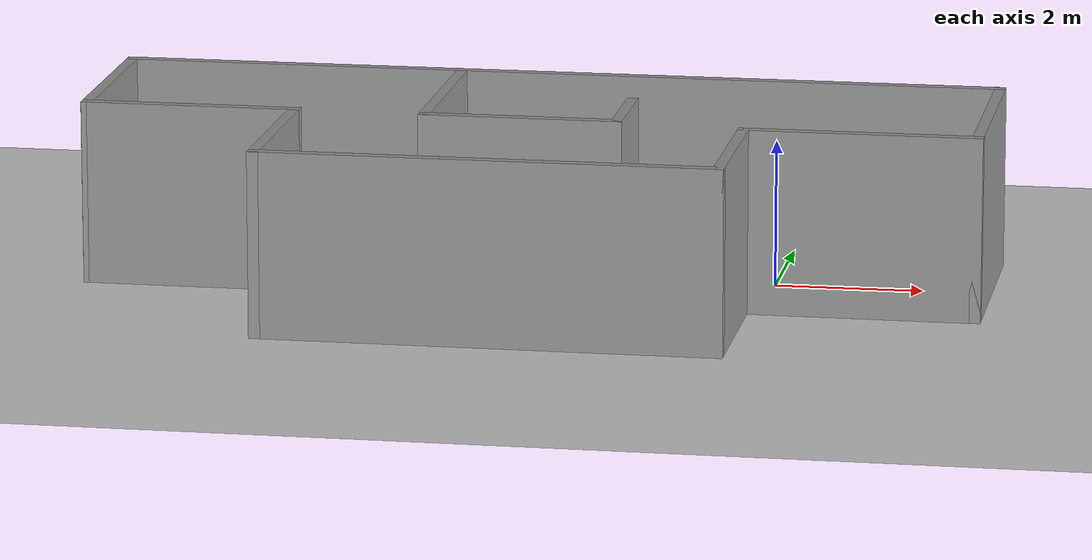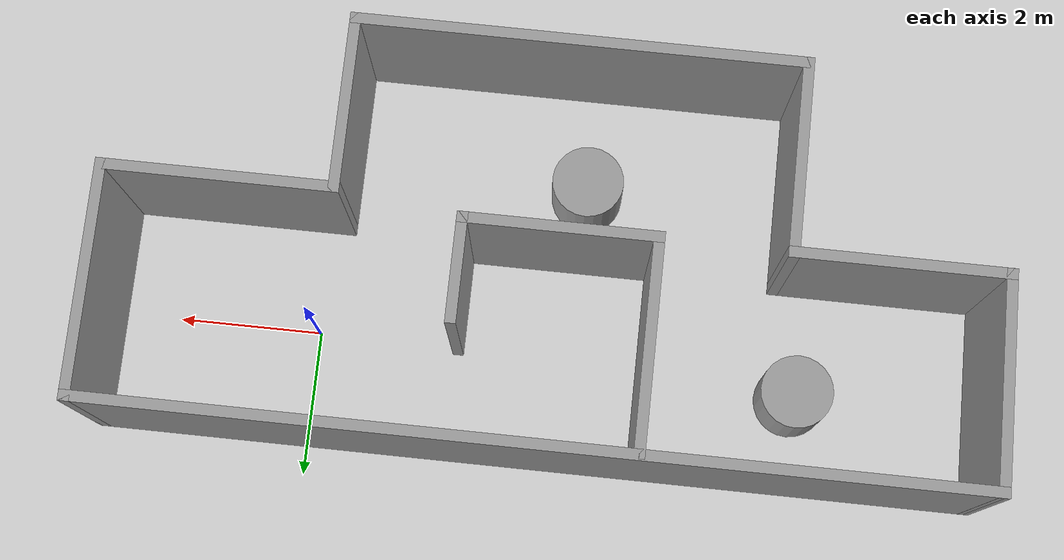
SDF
<sdf version="1.7">
 <world name="default">
  <light name="sun" type="directional">
   <pose>0 0 10 0 -0 0</pose>
   <diffuse>0.8 0.8 0.8 1</diffuse>
   <specular>0.2 0.2 0.2 1</specular>
   <attenuation>
    <range>1000</range>
    <constant>0.9</constant>
    <linear>0.01</linear>
    <quadratic>0.001</quadratic>
   </attenuation>
   <direction>-0.5 0.1 -0.9</direction>
   <spot><inner_angle>0</inner_angle><outer_angle>0</outer_angle><falloff>0</falloff></spot>
  </light>
  <model name="ground_plane">
   <static>1</static>
   <link name="link">
    <collision name="collision">
     <geometry><plane><normal>0 0 1</normal><size>100 100</size></plane></geometry>
     <surface><friction><ode><mu>100</mu><mu2>50</mu2></ode></friction></surface>
    </collision>
    <visual name="visual">
     <cast_shadows>0</cast_shadows>
     <geometry><plane><normal>0 0 1</normal><size>100 100</size></plane></geometry>
     <material>
      <script><uri>file://media/materials/scripts/gazebo.material</uri><name>Gazebo/Grey</name></script>
     </material>
    </visual>
   </link>
  </model>
  <gravity>0 0 -9.8</gravity>
  <magnetic_field>6e-06 2.3e-05 -4.2e-05</magnetic_field>
  <atmosphere type="adiabatic"/>
  <physics type="ode">
   <max_step_size>0.001</max_step_size>
   <real_time_factor>1</real_time_factor>
   <real_time_update_rate>1000</real_time_update_rate>
  </physics>
  <scene><ambient>0.4 0.4 0.4 1</ambient><background>0.7 0.7 0.7 1</background><shadows>1</shadows></scene>
  <audio><device>default</device></audio>
  <spherical_coordinates>
   <surface_model>EARTH_WGS84</surface_model>
   <latitude_deg>0</latitude_deg>
   <longitude_deg>0</longitude_deg>
   <elevation>0</elevation>
   <heading_deg>0</heading_deg>
  </spherical_coordinates>
  <model name="task1">
   <pose>-3.19723 -1.18273 0 0 -0 0</pose>
   <link name="Wall_1">
    <collision name="Wall_1_Collision">
     <geometry><box><size>12.25 0.15 2.5</size></box></geometry>
     <pose>0 0 1.25 0 -0 0</pose>
    </collision>
    <visual name="Wall_1_Visual">
     <pose>0 0 1.25 0 -0 0</pose>
     <geometry><box><size>12.25 0.15 2.5</size></box></geometry>
     <material>
      <script><uri>file://media/materials/scripts/gazebo.material</uri><name>Gazebo/Grey</name></script>
      <ambient>1 1 1 1</ambient>
     </material>
     <meta><layer>0</layer></meta>
    </visual>
    <pose>0.000652 2.72435 0 0 -0 0</pose>
   </link>
   <link name="Wall_10">
    <collision name="Wall_10_Collision">
     <geometry><box><size>3.00044 0.15 2.5</size></box></geometry>
     <pose>0 0 1.25 0 -0 0</pose>
    </collision>
    <visual name="Wall_10_Visual">
     <pose>0 0 1.25 0 -0 0</pose>
     <geometry><box><size>3.00044 0.15 2.5</size></box></geometry>
     <material>
      <script><uri>file://media/materials/scripts/gazebo.material</uri><name>Gazebo/Grey</name></script>
      <ambient>1 1 1 1</ambient>
     </material>
     <meta><layer>0</layer></meta>
    </visual>
    <pose>-6.02435 1.29935 0 0 -0 1.58834</pose>
   </link>
   <link name="Wall_12">
    <collision name="Wall_12_Collision">
     <geometry><box><size>3 0.15 2.5</size></box></geometry>
     <pose>0 0 1.25 0 -0 0</pose>
    </collision>
    <visual name="Wall_12_Visual">
     <pose>0 0 1.25 0 -0 0</pose>
     <geometry><box><size>3 0.15 2.5</size></box></geometry>
     <material>
      <script><uri>file://media/materials/scripts/gazebo.material</uri><name>Gazebo/Grey</name></script>
      <ambient>1 1 1 1</ambient>
     </material>
     <meta><layer>0</layer></meta>
    </visual>
    <pose>-1.37935 1.27935 0 0 -0 1.5708</pose>
   </link>
   <link name="Wall_15">
    <collision name="Wall_15_Collision">
     <geometry><box><size>2.75 0.15 2.5</size></box></geometry>
     <pose>0 0 1.25 0 -0 0</pose>
    </collision>
    <visual name="Wall_15_Visual">
     <pose>0 0 1.25 0 -0 0</pose>
     <geometry><box><size>2.75 0.15 2.5</size></box></geometry>
     <material>
      <script><uri>file://media/materials/scripts/gazebo.material</uri><name>Gazebo/Grey</name></script>
      <ambient>1 1 1 1</ambient>
     </material>
     <meta><layer>0</layer></meta>
    </visual>
    <pose>-0.079348 -0.145652 0 0 -0 0</pose>
   </link>
   <link name="Wall_16">
    <collision name="Wall_16_Collision">
     <geometry><box><size>1.5 0.15 2.5</size></box></geometry>
     <pose>0 0 1.25 0 -0 0</pose>
    </collision>
    <visual name="Wall_16_Visual">
     <pose>0 0 1.25 0 -0 0</pose>
     <geometry><box><size>1.5 0.15 2.5</size></box></geometry>
     <material>
      <script><uri>file://media/materials/scripts/gazebo.material</uri><name>Gazebo/Grey</name></script>
      <ambient>1 1 1 1</ambient>
     </material>
     <meta><layer>0</layer></meta>
    </visual>
    <pose>1.22065 0.529348 0 0 -0 1.5708</pose>
   </link>
   <link name="Wall_2">
    <collision name="Wall_2_Collision">
     <geometry><box><size>3.25 0.15 2.5</size></box></geometry>
     <pose>0 0 1.25 0 -0 0</pose>
    </collision>
    <visual name="Wall_2_Visual">
     <pose>0 0 1.25 0 -0 0</pose>
     <geometry><box><size>3.25 0.15 2.5</size></box></geometry>
     <material>
      <script><uri>file://media/materials/scripts/gazebo.material</uri><name>Gazebo/Grey</name></script>
      <ambient>1 1 1 1</ambient>
     </material>
     <meta><layer>0</layer></meta>
    </visual>
    <pose>6.05065 1.17435 0 0 -0 -1.5708</pose>
   </link>
   <link name="Wall_3">
    <collision name="Wall_3_Collision">
     <geometry><box><size>3.25 0.15 2.5</size></box></geometry>
     <pose>0 0 1.25 0 -0 0</pose>
    </collision>
    <visual name="Wall_3_Visual">
     <pose>0 0 1.25 0 -0 0</pose>
     <geometry><box><size>3.25 0.15 2.5</size></box></geometry>
     <material>
      <script><uri>file://media/materials/scripts/gazebo.material</uri><name>Gazebo/Grey</name></script>
      <ambient>1 1 1 1</ambient>
     </material>
     <meta><layer>0</layer></meta>
    </visual>
    <pose>4.50065 -0.375652 0 0 -0 3.14159</pose>
   </link>
   <link name="Wall_4">
    <collision name="Wall_4_Collision">
     <geometry><box><size>2.5 0.15 2.5</size></box></geometry>
     <pose>0 0 1.25 0 -0 0</pose>
    </collision>
    <visual name="Wall_4_Visual">
     <pose>0 0 1.25 0 -0 0</pose>
     <geometry><box><size>2.5 0.15 2.5</size></box></geometry>
     <material>
      <script><uri>file://media/materials/scripts/gazebo.material</uri><name>Gazebo/Grey</name></script>
      <ambient>1 1 1 1</ambient>
     </material>
     <meta><layer>0</layer></meta>
    </visual>
    <pose>2.95065 -1.55065 0 0 -0 -1.5708</pose>
   </link>
   <link name="Wall_5">
    <collision name="Wall_5_Collision">
     <geometry><box><size>6.25 0.15 2.5</size></box></geometry>
     <pose>0 0 1.25 0 -0 0</pose>
    </collision>
    <visual name="Wall_5_Visual">
     <pose>0 0 1.25 0 -0 0</pose>
     <geometry><box><size>6.25 0.15 2.5</size></box></geometry>
     <material>
      <script><uri>file://media/materials/scripts/gazebo.material</uri><name>Gazebo/Grey</name></script>
      <ambient>1 1 1 1</ambient>
     </material>
     <meta><layer>0</layer></meta>
    </visual>
    <pose>-0.099348 -2.72565 0 0 -0 3.14159</pose>
   </link>
   <link name="Wall_6">
    <collision name="Wall_6_Collision">
     <geometry><box><size>2.75 0.15 2.5</size></box></geometry>
     <pose>0 0 1.25 0 -0 0</pose>
    </collision>
    <visual name="Wall_6_Visual">
     <pose>0 0 1.25 0 -0 0</pose>
     <geometry><box><size>2.75 0.15 2.5</size></box></geometry>
     <material>
      <script><uri>file://media/materials/scripts/gazebo.material</uri><name>Gazebo/Grey</name></script>
      <ambient>1 1 1 1</ambient>
     </material>
     <meta><layer>0</layer></meta>
    </visual>
    <pose>-3.14935 -1.42565 0 0 -0 1.5708</pose>
   </link>
   <link name="Wall_7">
    <collision name="Wall_7_Collision">
     <geometry><box><size>3 0.15 2.5</size></box></geometry>
     <pose>0 0 1.25 0 -0 0</pose>
    </collision>
    <visual name="Wall_7_Visual">
     <pose>0 0 1.25 0 -0 0</pose>
     <geometry><box><size>3 0.15 2.5</size></box></geometry>
     <material>
      <script><uri>file://media/materials/scripts/gazebo.material</uri><name>Gazebo/Grey</name></script>
      <ambient>1 1 1 1</ambient>
     </material>
     <meta><layer>0</layer></meta>
    </visual>
    <pose>-4.57435 -0.125652 0 0 -0 3.14159</pose>
   </link>
   <static>1</static>
  </model>
  <model name="unit_cylinder">
   <pose>-6.69991 0.284041 0.499995 2e-06 -1e-06 1e-05</pose>
   <link name="link">
    <inertial>
     <mass>1</mass>
     <inertia><ixx>0.145833</ixx><ixy>0</ixy><ixz>0</ixz><iyy>0.145833</iyy><iyz>0</iyz><izz>0.125</izz></inertia>
    </inertial>
    <collision name="collision">
     <geometry><cylinder><radius>0.5</radius><length>1</length></cylinder></geometry>
    </collision>
    <visual name="visual">
     <geometry><cylinder><radius>0.5</radius><length>1</length></cylinder></geometry>
     <material>
      <script><name>Gazebo/Grey</name><uri>file://media/materials/scripts/gazebo.material</uri></script>
     </material>
    </visual>
   </link>
  </model>
  <model name="unit_cylinder_0">
   <pose>-3.56818 -2.36573 0.499998 3e-06 4e-06 -0</pose>
   <link name="link">
    <inertial>
     <mass>1</mass>
     <inertia><ixx>0.145833</ixx><ixy>0</ixy><ixz>0</ixz><iyy>0.145833</iyy><iyz>0</iyz><izz>0.125</izz></inertia>
    </inertial>
    <collision name="collision">
     <geometry><cylinder><radius>0.5</radius><length>1</length></cylinder></geometry>
    </collision>
    <visual name="visual">
     <geometry><cylinder><radius>0.5</radius><length>1</length></cylinder></geometry>
     <material>
      <script><name>Gazebo/Grey</name><uri>file://media/materials/scripts/gazebo.material</uri></script>
     </material>
    </visual>
   </link>
  </model>
 </world>
</sdf>
